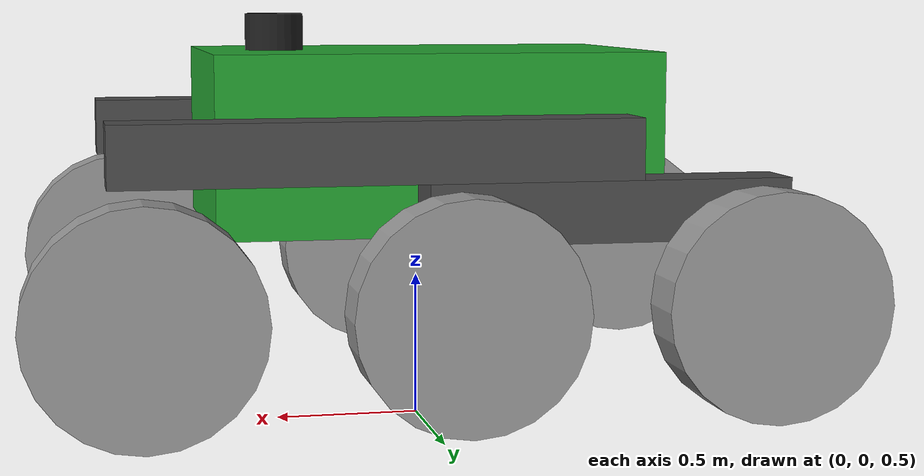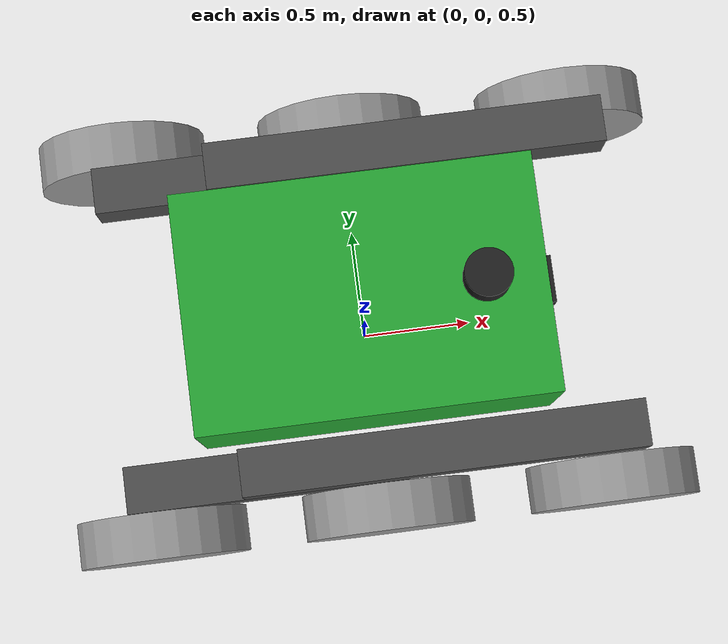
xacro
<?xml version='1.0'?>
<robot name="bocbot" xmlns:xacro="http://www.ros.org/wiki/xacro">

  <xacro:include filename="bocbot.gazebo" />

  <link name="robot_footprint"></link>

  <joint name="robot_footprint_joint" type="fixed">
    <!-- GIANT SCALE SPAWN: 1.5m in the air to allow the monster wheels to unfold -->
    <origin xyz="0 0 1.5" rpy="0 0 0" />
    <parent link="robot_footprint"/>
    <child link="base_link" />
  </joint>

  <!-- MAIN CHASSIS - 5X SCALE (1.5m Length)                    -->
  <link name='base_link'>
    <inertial>
      <mass value="50.0"/>
      <!-- Heavy underbelly battery simulation -->
      <origin xyz="0 0 -0.2" rpy=" 0 0 0"/>
      <inertia ixx="5.0" ixy="0" ixz="0" iyy="8.0" iyz="0" izz="10.0" />
    </inertial>
    <collision name='collision'>
      <origin xyz="0 0 0" rpy=" 0 0 0"/>
      <geometry><box size="1.5 1.0 0.6"/></geometry>
    </collision>
    <visual name='chassis_visual'>
      <origin xyz="0 0 0" rpy=" 0 0 0"/>
      <geometry><box size="1.5 1.0 0.6"/></geometry>
    </visual>
  </link>
  <gazebo reference="base_link"><material>Gazebo/Green</material></gazebo>

  <link name="imu_link"><inertial><mass value="0.01"/><origin xyz="0 0 0"/><inertia ixx="1e-6" ixy="0" ixz="0" iyy="1e-6" iyz="0" izz="1e-6"/></inertial></link>
  <joint name="imu_joint" type="fixed"><origin xyz="0 0 0"/><parent link="base_link"/><child link="imu_link"/></joint>

  <link name="camera">
    <visual><origin xyz="0 0 0"/><geometry><box size="0.1 0.2 0.1"/></geometry></visual>
  </link>
  <joint type="fixed" name="camera_joint">
    <origin xyz="0.75 0 0"/><child link="camera"/><parent link="base_link"/>
  </joint>
  <gazebo reference="camera"><material>Gazebo/Black</material></gazebo>

  <link name="hokuyo">
    <visual><origin xyz="0 0 0"/><geometry><cylinder radius="0.1" length="0.15"/></geometry></visual>
  </link>
  <joint type="fixed" name="hokuyo_joint">
    <origin xyz="0.5 0 0.35"/><child link="hokuyo"/><parent link="base_link"/>
  </joint>
  <gazebo reference="hokuyo"><material>Gazebo/Black</material></gazebo>

  <!-- MONSTER WHEEL MACRO                                      -->
  <xacro:macro name="boc_wheel" params="name parent origin_xyz">
    <link name="${name}">
      <inertial>
        <mass value="5.0"/>
        <origin xyz="0 0 0" rpy="1.570796 0 0"/>
        <!-- Proportional inertia for large cylinder -->
        <inertia ixx="0.2" ixy="0" ixz="0" iyy="0.2" iyz="0" izz="0.35" />
      </inertial>
      <visual>
        <origin xyz="0 0 0" rpy="1.570796 0 0"/>
        <geometry><cylinder length="0.2" radius="0.375"/></geometry>
      </visual>
      <collision>
        <origin xyz="0 0 0" rpy="1.570796 0 0"/>
        <geometry><cylinder length="0.2" radius="0.375"/></geometry>
      </collision>
    </link>
    <gazebo reference="${name}">
      <material>Gazebo/Grey</material>
      <!-- Optimized for massive rover turning -->
      <mu1>1.5</mu1>
      <mu2>0.02</mu2> <!-- Almost zero lateral friction to allow easy pivot -->
      <fdir1>1 0 0</fdir1> <!-- Align primary friction with wheel roll direction -->
      <kp>1000000.0</kp>
      <kd>100.0</kd>
    </gazebo>
    <joint name="${name}_joint" type="continuous">
      <origin xyz="${origin_xyz}" rpy="0 0 0"/>
      <parent link="${parent}"/>
      <child link="${name}"/>
      <axis xyz="0 1 0"/>
      <dynamics damping="0.5" friction="0.5"/>
    </joint>
  </xacro:macro>

  <!-- LEFT SIDE ASSEMBLY              -->
  <link name="left_rocker_arm">
    <inertial>
      <mass value="5.0"/>
      <origin xyz="0.25 0 0" rpy="0 0 0"/>
      <inertia ixx="0.1" ixy="0" ixz="0" iyy="0.5" iyz="0" izz="0.5" />
    </inertial>
    <visual><origin xyz="0.25 0 0"/><geometry><box size="1.7 0.2 0.2"/></geometry></visual>
    <collision><origin xyz="0.25 0 0"/><geometry><box size="1.7 0.2 0.2"/></geometry></collision>
  </link>
  <gazebo reference="left_rocker_arm"><material>Gazebo/DarkGrey</material></gazebo>

  <joint name="left_differential_axle" type="revolute">
    <origin xyz="0.0 0.65 0" rpy="0 0 0"/>
    <parent link="base_link"/>
    <child link="left_rocker_arm"/>
    <axis xyz="0 1 0"/>
    <limit lower="-0.6" upper="0.6" effort="10000" velocity="5"/>
    <dynamics damping="100.0" friction="50.0"/>
  </joint>

  <!-- Front Left Wheel: X=1.0, Y=0.2, Z=-0.5 -->
  <xacro:boc_wheel name="front_left_wheel" parent="left_rocker_arm" origin_xyz="1.0 0.2 -0.5"/>

  <link name="left_bogie_link">
    <inertial>
      <mass value="4.0"/>
      <origin xyz="0 0 0" rpy="0 0 0"/>
      <inertia ixx="0.1" ixy="0" ixz="0" iyy="0.3" iyz="0" izz="0.3" />
    </inertial>
    <visual><origin xyz="0 0 0"/><geometry><box size="1.2 0.2 0.2"/></geometry></visual>
    <collision><origin xyz="0 0 0"/><geometry><box size="1.2 0.2 0.2"/></geometry></collision>
  </link>
  <gazebo reference="left_bogie_link"><material>Gazebo/DarkGrey</material></gazebo>

  <joint name="left_bogie_pivot" type="revolute">
    <origin xyz="-0.5 0 -0.2" rpy="0 0 0"/>
    <parent link="left_rocker_arm"/>
    <child link="left_bogie_link"/>
    <axis xyz="0 1 0"/>
    <limit lower="-0.8" upper="0.8" effort="5000" velocity="5"/>
    <dynamics damping="50.0" friction="20.0"/>
  </joint>

  <xacro:boc_wheel name="mid_left_wheel" parent="left_bogie_link" origin_xyz="0.5 0.2 -0.3"/>
  <xacro:boc_wheel name="back_left_wheel" parent="left_bogie_link" origin_xyz="-0.5 0.2 -0.3"/>

  <!-- RIGHT SIDE ASSEMBLY             -->
  <link name="right_rocker_arm">
    <inertial>
      <mass value="5.0"/>
      <origin xyz="0.25 0 0" rpy="0 0 0"/>
      <inertia ixx="0.1" ixy="0" ixz="0" iyy="0.5" iyz="0" izz="0.5" />
    </inertial>
    <visual><origin xyz="0.25 0 0"/><geometry><box size="1.7 0.2 0.2"/></geometry></visual>
    <collision><origin xyz="0.25 0 0"/><geometry><box size="1.7 0.2 0.2"/></geometry></collision>
  </link>
  <gazebo reference="right_rocker_arm"><material>Gazebo/DarkGrey</material></gazebo>

  <joint name="right_differential_axle" type="revolute">
    <origin xyz="0.0 -0.65 0" rpy="0 0 0"/>
    <parent link="base_link"/>
    <child link="right_rocker_arm"/>
    <axis xyz="0 1 0"/>
    <limit lower="-0.6" upper="0.6" effort="10000" velocity="5"/>
    <dynamics damping="100.0" friction="50.0"/>
  </joint>

  <!-- Front Right Wheel -->
  <xacro:boc_wheel name="front_right_wheel" parent="right_rocker_arm" origin_xyz="1.0 -0.2 -0.5"/>

  <link name="right_bogie_link">
    <inertial>
      <mass value="4.0"/>
      <origin xyz="0 0 0" rpy="0 0 0"/>
      <inertia ixx="0.1" ixy="0" ixz="0" iyy="0.3" iyz="0" izz="0.3" />
    </inertial>
    <visual><origin xyz="0 0 0"/><geometry><box size="1.2 0.2 0.2"/></geometry></visual>
    <collision><origin xyz="0 0 0"/><geometry><box size="1.2 0.2 0.2"/></geometry></collision>
  </link>
  <gazebo reference="right_bogie_link"><material>Gazebo/DarkGrey</material></gazebo>

  <joint name="right_bogie_pivot" type="revolute">
    <origin xyz="-0.5 0 -0.2" rpy="0 0 0"/>
    <parent link="right_rocker_arm"/>
    <child link="right_bogie_link"/>
    <axis xyz="0 1 0"/>
    <limit lower="-0.8" upper="0.8" effort="5000" velocity="5"/>
    <dynamics damping="50.0" friction="20.0"/>
  </joint>

  <xacro:boc_wheel name="mid_right_wheel" parent="right_bogie_link" origin_xyz="0.5 -0.2 -0.3"/>
  <xacro:boc_wheel name="back_right_wheel" parent="right_bogie_link" origin_xyz="-0.5 -0.2 -0.3"/>

</robot>
